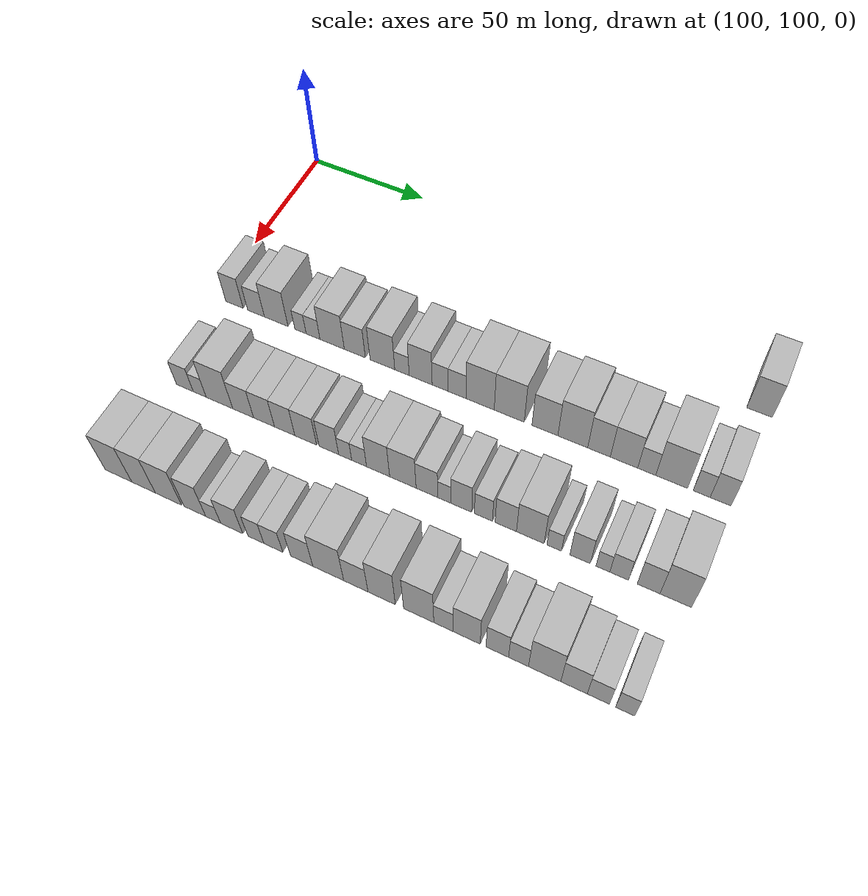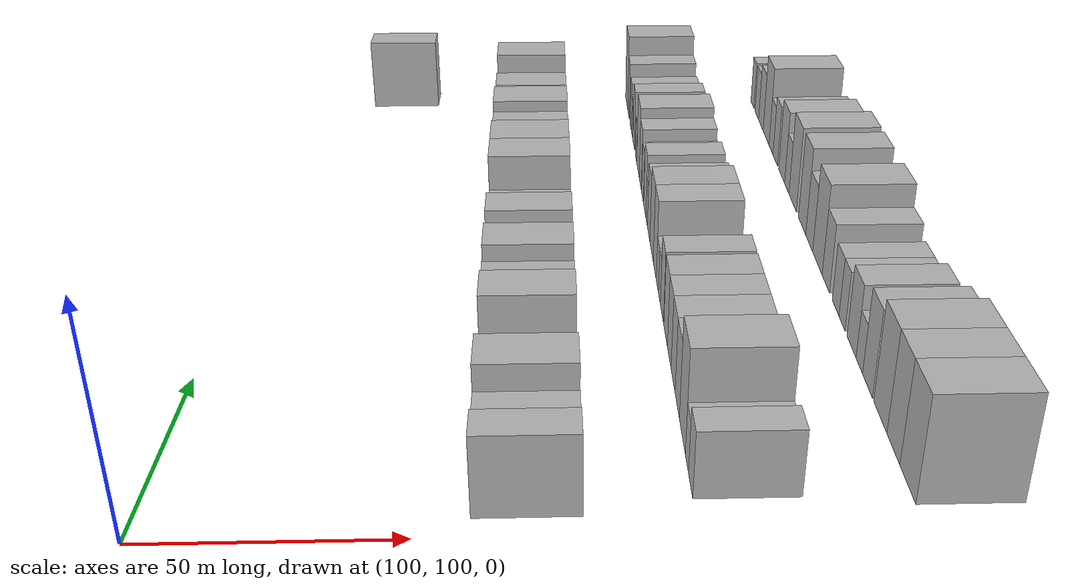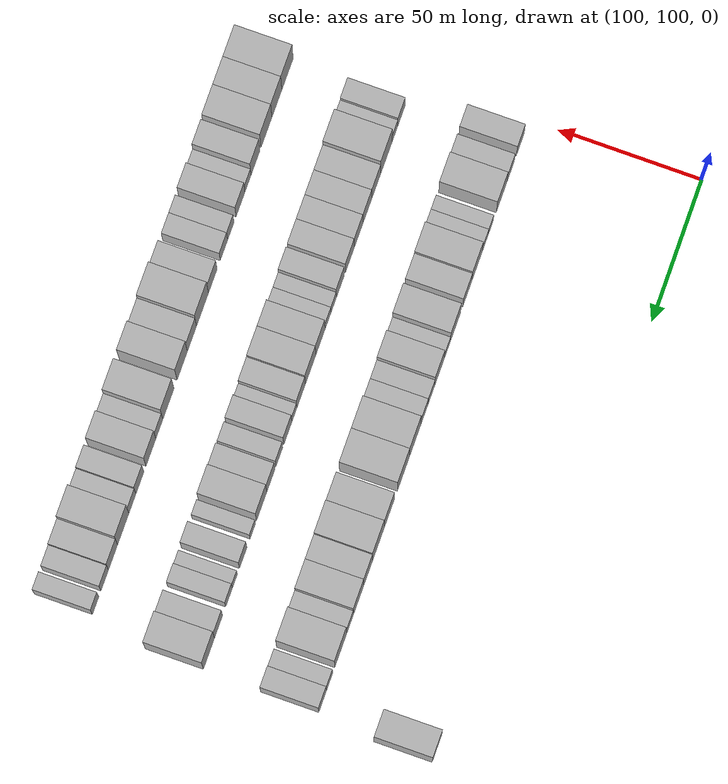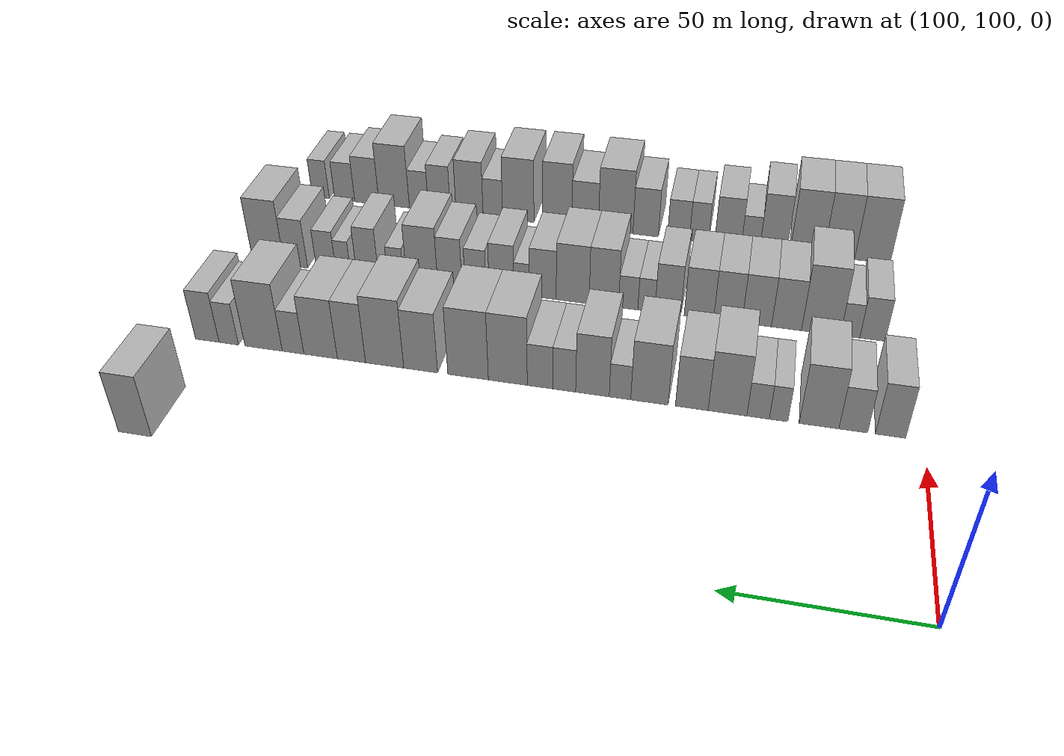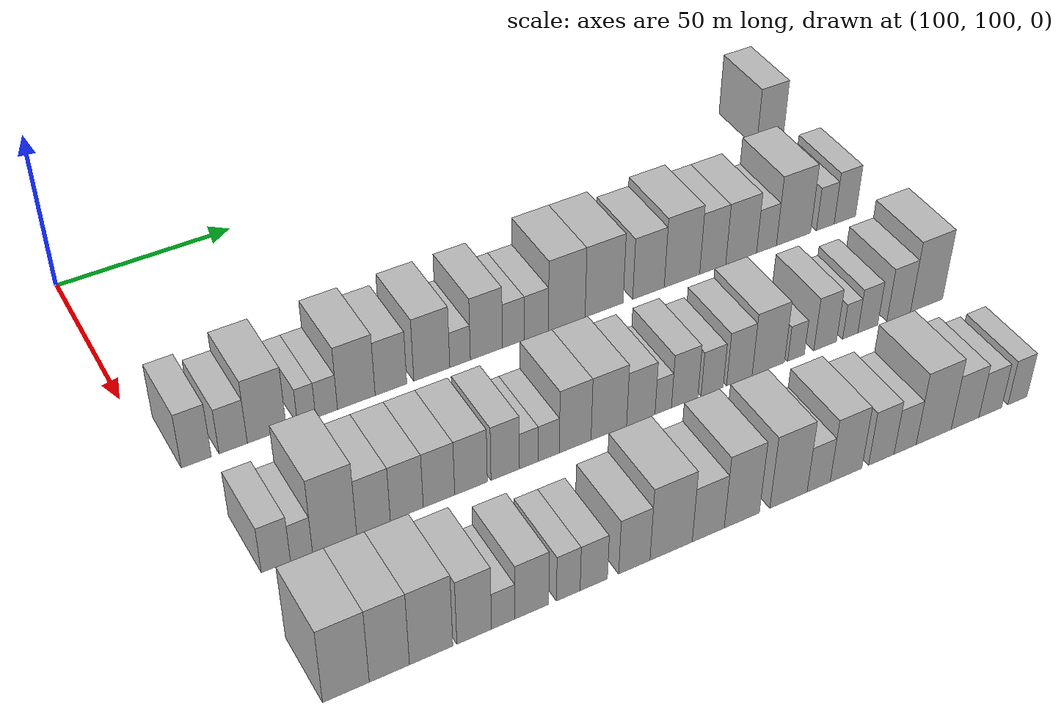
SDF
<sdf version="1.6">
 <world name="default">
  <model name="building_379">
   <static>1</static>
   <pose>130.0000 305.1991 0 0.000000 0.000000 0.000000</pose>
   <link name="link">
    <pose>0 0 10.50 0 0 0</pose>
    <collision name="collision"><geometry><box><size>20.0000 9.5007 21.0000</size></box></geometry></collision>
    <visual name="visual">
     <cast_shadows>0</cast_shadows>
     <geometry><box><size>20.0000 9.5007 21.0000</size></box></geometry>
     <material>
      <script>
       <uri>model://HANNAS_wall/materials/scripts</uri>
       <uri>model://HANNAS_wall/materials/textures</uri>
       <name>vrc/HANNAS_wall</name>
      </script>
     </material>
    </visual>
   </link>
  </model>
  <model name="building_496">
   <static>1</static>
   <pose>170.0000 108.9377 0 0.000000 0.000000 0.000000</pose>
   <link name="link">
    <pose>0 0 9.00 0 0 0</pose>
    <collision name="collision"><geometry><box><size>20.0000 7.8221 18.0000</size></box></geometry></collision>
    <visual name="visual">
     <cast_shadows>0</cast_shadows>
     <geometry><box><size>20.0000 7.8221 18.0000</size></box></geometry>
     <material>
      <script>
       <uri>model://HANNAS_wall/materials/scripts</uri>
       <uri>model://HANNAS_wall/materials/textures</uri>
       <name>vrc/HANNAS_wall</name>
      </script>
     </material>
    </visual>
   </link>
  </model>
  <model name="building_497">
   <static>1</static>
   <pose>170.0000 118.5829 0 0.000000 0.000000 0.000000</pose>
   <link name="link">
    <pose>0 0 7.50 0 0 0</pose>
    <collision name="collision"><geometry><box><size>20.0000 7.4683 15.0000</size></box></geometry></collision>
    <visual name="visual">
     <cast_shadows>0</cast_shadows>
     <geometry><box><size>20.0000 7.4683 15.0000</size></box></geometry>
     <material>
      <script>
       <uri>model://HANNAS_wall/materials/scripts</uri>
       <uri>model://HANNAS_wall/materials/textures</uri>
       <name>vrc/HANNAS_wall</name>
      </script>
     </material>
    </visual>
   </link>
  </model>
  <model name="building_498">
   <static>1</static>
   <pose>170.0000 127.5397 0 0.000000 0.000000 0.000000</pose>
   <link name="link">
    <pose>0 0 10.50 0 0 0</pose>
    <collision name="collision"><geometry><box><size>20.0000 10.4454 21.0000</size></box></geometry></collision>
    <visual name="visual">
     <cast_shadows>0</cast_shadows>
     <geometry><box><size>20.0000 10.4454 21.0000</size></box></geometry>
     <material>
      <script>
       <uri>model://HANNAS_wall/materials/scripts</uri>
       <uri>model://HANNAS_wall/materials/textures</uri>
       <name>vrc/HANNAS_wall</name>
      </script>
     </material>
    </visual>
   </link>
  </model>
  <model name="building_499">
   <static>1</static>
   <pose>170.0000 138.2293 0 0.000000 0.000000 0.000000</pose>
   <link name="link">
    <pose>0 0 6.00 0 0 0</pose>
    <collision name="collision"><geometry><box><size>20.0000 4.9337 12.0000</size></box></geometry></collision>
    <visual name="visual">
     <cast_shadows>0</cast_shadows>
     <geometry><box><size>20.0000 4.9337 12.0000</size></box></geometry>
     <material>
      <script>
       <uri>model://HANNAS_wall/materials/scripts</uri>
       <uri>model://HANNAS_wall/materials/textures</uri>
       <name>vrc/HANNAS_wall</name>
      </script>
     </material>
    </visual>
   </link>
  </model>
  <model name="building_500">
   <static>1</static>
   <pose>170.0000 143.6914 0 0.000000 0.000000 0.000000</pose>
   <link name="link">
    <pose>0 0 6.00 0 0 0</pose>
    <collision name="collision"><geometry><box><size>20.0000 5.9903 12.0000</size></box></geometry></collision>
    <visual name="visual">
     <cast_shadows>0</cast_shadows>
     <geometry><box><size>20.0000 5.9903 12.0000</size></box></geometry>
     <material>
      <script>
       <uri>model://HANNAS_wall/materials/scripts</uri>
       <uri>model://HANNAS_wall/materials/textures</uri>
       <name>vrc/HANNAS_wall</name>
      </script>
     </material>
    </visual>
   </link>
  </model>
  <model name="building_501">
   <static>1</static>
   <pose>170.0000 151.9131 0 0.000000 0.000000 0.000000</pose>
   <link name="link">
    <pose>0 0 10.50 0 0 0</pose>
    <collision name="collision"><geometry><box><size>20.0000 10.4530 21.0000</size></box></geometry></collision>
    <visual name="visual">
     <cast_shadows>0</cast_shadows>
     <geometry><box><size>20.0000 10.4530 21.0000</size></box></geometry>
     <material>
      <script>
       <uri>model://HANNAS_wall/materials/scripts</uri>
       <uri>model://HANNAS_wall/materials/textures</uri>
       <name>vrc/HANNAS_wall</name>
      </script>
     </material>
    </visual>
   </link>
  </model>
  <model name="building_502">
   <static>1</static>
   <pose>170.0000 161.5912 0 0.000000 0.000000 0.000000</pose>
   <link name="link">
    <pose>0 0 9.00 0 0 0</pose>
    <collision name="collision"><geometry><box><size>20.0000 8.9033 18.0000</size></box></geometry></collision>
    <visual name="visual">
     <cast_shadows>0</cast_shadows>
     <geometry><box><size>20.0000 8.9033 18.0000</size></box></geometry>
     <material>
      <script>
       <uri>model://HANNAS_wall/materials/scripts</uri>
       <uri>model://HANNAS_wall/materials/textures</uri>
       <name>vrc/HANNAS_wall</name>
      </script>
     </material>
    </visual>
   </link>
  </model>
  <model name="building_503">
   <static>1</static>
   <pose>170.0000 173.2018 0 0.000000 0.000000 0.000000</pose>
   <link name="link">
    <pose>0 0 10.50 0 0 0</pose>
    <collision name="collision"><geometry><box><size>20.0000 10.3179 21.0000</size></box></geometry></collision>
    <visual name="visual">
     <cast_shadows>0</cast_shadows>
     <geometry><box><size>20.0000 10.3179 21.0000</size></box></geometry>
     <material>
      <script>
       <uri>model://HANNAS_wall/materials/scripts</uri>
       <uri>model://HANNAS_wall/materials/textures</uri>
       <name>vrc/HANNAS_wall</name>
      </script>
     </material>
    </visual>
   </link>
  </model>
  <model name="building_504">
   <static>1</static>
   <pose>170.0000 181.3502 0 0.000000 0.000000 0.000000</pose>
   <link name="link">
    <pose>0 0 6.00 0 0 0</pose>
    <collision name="collision"><geometry><box><size>20.0000 5.9787 12.0000</size></box></geometry></collision>
    <visual name="visual">
     <cast_shadows>0</cast_shadows>
     <geometry><box><size>20.0000 5.9787 12.0000</size></box></geometry>
     <material>
      <script>
       <uri>model://HANNAS_wall/materials/scripts</uri>
       <uri>model://HANNAS_wall/materials/textures</uri>
       <name>vrc/HANNAS_wall</name>
      </script>
     </material>
    </visual>
   </link>
  </model>
  <model name="building_505">
   <static>1</static>
   <pose>170.0000 189.0391 0 0.000000 0.000000 0.000000</pose>
   <link name="link">
    <pose>0 0 10.50 0 0 0</pose>
    <collision name="collision"><geometry><box><size>20.0000 9.3990 21.0000</size></box></geometry></collision>
    <visual name="visual">
     <cast_shadows>0</cast_shadows>
     <geometry><box><size>20.0000 9.3990 21.0000</size></box></geometry>
     <material>
      <script>
       <uri>model://HANNAS_wall/materials/scripts</uri>
       <uri>model://HANNAS_wall/materials/textures</uri>
       <name>vrc/HANNAS_wall</name>
      </script>
     </material>
    </visual>
   </link>
  </model>
  <model name="building_506">
   <static>1</static>
   <pose>170.0000 196.9873 0 0.000000 0.000000 0.000000</pose>
   <link name="link">
    <pose>0 0 7.50 0 0 0</pose>
    <collision name="collision"><geometry><box><size>20.0000 6.4974 15.0000</size></box></geometry></collision>
    <visual name="visual">
     <cast_shadows>0</cast_shadows>
     <geometry><box><size>20.0000 6.4974 15.0000</size></box></geometry>
     <material>
      <script>
       <uri>model://HANNAS_wall/materials/scripts</uri>
       <uri>model://HANNAS_wall/materials/textures</uri>
       <name>vrc/HANNAS_wall</name>
      </script>
     </material>
    </visual>
   </link>
  </model>
  <model name="building_507">
   <static>1</static>
   <pose>170.0000 203.8394 0 0.000000 0.000000 0.000000</pose>
   <link name="link">
    <pose>0 0 7.50 0 0 0</pose>
    <collision name="collision"><geometry><box><size>20.0000 7.2068 15.0000</size></box></geometry></collision>
    <visual name="visual">
     <cast_shadows>0</cast_shadows>
     <geometry><box><size>20.0000 7.2068 15.0000</size></box></geometry>
     <material>
      <script>
       <uri>model://HANNAS_wall/materials/scripts</uri>
       <uri>model://HANNAS_wall/materials/textures</uri>
       <name>vrc/HANNAS_wall</name>
      </script>
     </material>
    </visual>
   </link>
  </model>
  <model name="building_508">
   <static>1</static>
   <pose>170.0000 213.0315 0 0.000000 0.000000 0.000000</pose>
   <link name="link">
    <pose>0 0 12.00 0 0 0</pose>
    <collision name="collision"><geometry><box><size>20.0000 11.1772 24.0000</size></box></geometry></collision>
    <visual name="visual">
     <cast_shadows>0</cast_shadows>
     <geometry><box><size>20.0000 11.1772 24.0000</size></box></geometry>
     <material>
      <script>
       <uri>model://HANNAS_wall/materials/scripts</uri>
       <uri>model://HANNAS_wall/materials/textures</uri>
       <name>vrc/HANNAS_wall</name>
      </script>
     </material>
    </visual>
   </link>
  </model>
  <model name="building_509">
   <static>1</static>
   <pose>170.0000 224.4998 0 0.000000 0.000000 0.000000</pose>
   <link name="link">
    <pose>0 0 12.00 0 0 0</pose>
    <collision name="collision"><geometry><box><size>20.0000 11.7595 24.0000</size></box></geometry></collision>
    <visual name="visual">
     <cast_shadows>0</cast_shadows>
     <geometry><box><size>20.0000 11.7595 24.0000</size></box></geometry>
     <material>
      <script>
       <uri>model://HANNAS_wall/materials/scripts</uri>
       <uri>model://HANNAS_wall/materials/textures</uri>
       <name>vrc/HANNAS_wall</name>
      </script>
     </material>
    </visual>
   </link>
  </model>
  <model name="building_510">
   <static>1</static>
   <pose>170.0000 238.3627 0 0.000000 0.000000 0.000000</pose>
   <link name="link">
    <pose>0 0 10.50 0 0 0</pose>
    <collision name="collision"><geometry><box><size>20.0000 9.9662 21.0000</size></box></geometry></collision>
    <visual name="visual">
     <cast_shadows>0</cast_shadows>
     <geometry><box><size>20.0000 9.9662 21.0000</size></box></geometry>
     <material>
      <script>
       <uri>model://HANNAS_wall/materials/scripts</uri>
       <uri>model://HANNAS_wall/materials/textures</uri>
       <name>vrc/HANNAS_wall</name>
      </script>
     </material>
    </visual>
   </link>
  </model>
  <model name="building_511">
   <static>1</static>
   <pose>170.0000 249.0247 0 0.000000 0.000000 0.000000</pose>
   <link name="link">
    <pose>0 0 12.00 0 0 0</pose>
    <collision name="collision"><geometry><box><size>20.0000 11.3579 24.0000</size></box></geometry></collision>
    <visual name="visual">
     <cast_shadows>0</cast_shadows>
     <geometry><box><size>20.0000 11.3579 24.0000</size></box></geometry>
     <material>
      <script>
       <uri>model://HANNAS_wall/materials/scripts</uri>
       <uri>model://HANNAS_wall/materials/textures</uri>
       <name>vrc/HANNAS_wall</name>
      </script>
     </material>
    </visual>
   </link>
  </model>
  <model name="building_512">
   <static>1</static>
   <pose>170.0000 258.9443 0 0.000000 0.000000 0.000000</pose>
   <link name="link">
    <pose>0 0 10.50 0 0 0</pose>
    <collision name="collision"><geometry><box><size>20.0000 8.4813 21.0000</size></box></geometry></collision>
    <visual name="visual">
     <cast_shadows>0</cast_shadows>
     <geometry><box><size>20.0000 8.4813 21.0000</size></box></geometry>
     <material>
      <script>
       <uri>model://HANNAS_wall/materials/scripts</uri>
       <uri>model://HANNAS_wall/materials/textures</uri>
       <name>vrc/HANNAS_wall</name>
      </script>
     </material>
    </visual>
   </link>
  </model>
  <model name="building_513">
   <static>1</static>
   <pose>170.0000 268.2589 0 0.000000 0.000000 0.000000</pose>
   <link name="link">
    <pose>0 0 10.50 0 0 0</pose>
    <collision name="collision"><geometry><box><size>20.0000 10.1478 21.0000</size></box></geometry></collision>
    <visual name="visual">
     <cast_shadows>0</cast_shadows>
     <geometry><box><size>20.0000 10.1478 21.0000</size></box></geometry>
     <material>
      <script>
       <uri>model://HANNAS_wall/materials/scripts</uri>
       <uri>model://HANNAS_wall/materials/textures</uri>
       <name>vrc/HANNAS_wall</name>
      </script>
     </material>
    </visual>
   </link>
  </model>
  <model name="building_514">
   <static>1</static>
   <pose>170.0000 276.6411 0 0.000000 0.000000 0.000000</pose>
   <link name="link">
    <pose>0 0 7.50 0 0 0</pose>
    <collision name="collision"><geometry><box><size>20.0000 6.6167 15.0000</size></box></geometry></collision>
    <visual name="visual">
     <cast_shadows>0</cast_shadows>
     <geometry><box><size>20.0000 6.6167 15.0000</size></box></geometry>
     <material>
      <script>
       <uri>model://HANNAS_wall/materials/scripts</uri>
       <uri>model://HANNAS_wall/materials/textures</uri>
       <name>vrc/HANNAS_wall</name>
      </script>
     </material>
    </visual>
   </link>
  </model>
  <model name="building_515">
   <static>1</static>
   <pose>170.0000 285.7174 0 0.000000 0.000000 0.000000</pose>
   <link name="link">
    <pose>0 0 12.00 0 0 0</pose>
    <collision name="collision"><geometry><box><size>20.0000 11.5358 24.0000</size></box></geometry></collision>
    <visual name="visual">
     <cast_shadows>0</cast_shadows>
     <geometry><box><size>20.0000 11.5358 24.0000</size></box></geometry>
     <material>
      <script>
       <uri>model://HANNAS_wall/materials/scripts</uri>
       <uri>model://HANNAS_wall/materials/textures</uri>
       <name>vrc/HANNAS_wall</name>
      </script>
     </material>
    </visual>
   </link>
  </model>
  <model name="building_516">
   <static>1</static>
   <pose>170.0000 296.5160 0 0.000000 0.000000 0.000000</pose>
   <link name="link">
    <pose>0 0 7.50 0 0 0</pose>
    <collision name="collision"><geometry><box><size>20.0000 6.0614 15.0000</size></box></geometry></collision>
    <visual name="visual">
     <cast_shadows>0</cast_shadows>
     <geometry><box><size>20.0000 6.0614 15.0000</size></box></geometry>
     <material>
      <script>
       <uri>model://HANNAS_wall/materials/scripts</uri>
       <uri>model://HANNAS_wall/materials/textures</uri>
       <name>vrc/HANNAS_wall</name>
      </script>
     </material>
    </visual>
   </link>
  </model>
  <model name="building_517">
   <static>1</static>
   <pose>170.0000 303.2435 0 0.000000 0.000000 0.000000</pose>
   <link name="link">
    <pose>0 0 9.00 0 0 0</pose>
    <collision name="collision"><geometry><box><size>20.0000 7.3937 18.0000</size></box></geometry></collision>
    <visual name="visual">
     <cast_shadows>0</cast_shadows>
     <geometry><box><size>20.0000 7.3937 18.0000</size></box></geometry>
     <material>
      <script>
       <uri>model://HANNAS_wall/materials/scripts</uri>
       <uri>model://HANNAS_wall/materials/textures</uri>
       <name>vrc/HANNAS_wall</name>
      </script>
     </material>
    </visual>
   </link>
  </model>
  <model name="building_622">
   <static>1</static>
   <pose>210.0000 112.8214 0 0.000000 0.000000 0.000000</pose>
   <link name="link">
    <pose>0 0 7.50 0 0 0</pose>
    <collision name="collision"><geometry><box><size>20.0000 7.2841 15.0000</size></box></geometry></collision>
    <visual name="visual">
     <cast_shadows>0</cast_shadows>
     <geometry><box><size>20.0000 7.2841 15.0000</size></box></geometry>
     <material>
      <script>
       <uri>model://HANNAS_wall/materials/scripts</uri>
       <uri>model://HANNAS_wall/materials/textures</uri>
       <name>vrc/HANNAS_wall</name>
      </script>
     </material>
    </visual>
   </link>
  </model>
  <model name="building_623">
   <static>1</static>
   <pose>210.0000 119.2446 0 0.000000 0.000000 0.000000</pose>
   <link name="link">
    <pose>0 0 6.00 0 0 0</pose>
    <collision name="collision"><geometry><box><size>20.0000 5.5623 12.0000</size></box></geometry></collision>
    <visual name="visual">
     <cast_shadows>0</cast_shadows>
     <geometry><box><size>20.0000 5.5623 12.0000</size></box></geometry>
     <material>
      <script>
       <uri>model://HANNAS_wall/materials/scripts</uri>
       <uri>model://HANNAS_wall/materials/textures</uri>
       <name>vrc/HANNAS_wall</name>
      </script>
     </material>
    </visual>
   </link>
  </model>
  <model name="building_624">
   <static>1</static>
   <pose>210.0000 127.6757 0 0.000000 0.000000 0.000000</pose>
   <link name="link">
    <pose>0 0 12.00 0 0 0</pose>
    <collision name="collision"><geometry><box><size>20.0000 11.2999 24.0000</size></box></geometry></collision>
    <visual name="visual">
     <cast_shadows>0</cast_shadows>
     <geometry><box><size>20.0000 11.2999 24.0000</size></box></geometry>
     <material>
      <script>
       <uri>model://HANNAS_wall/materials/scripts</uri>
       <uri>model://HANNAS_wall/materials/textures</uri>
       <name>vrc/HANNAS_wall</name>
      </script>
     </material>
    </visual>
   </link>
  </model>
  <model name="building_625">
   <static>1</static>
   <pose>210.0000 137.7132 0 0.000000 0.000000 0.000000</pose>
   <link name="link">
    <pose>0 0 9.00 0 0 0</pose>
    <collision name="collision"><geometry><box><size>20.0000 8.7752 18.0000</size></box></geometry></collision>
    <visual name="visual">
     <cast_shadows>0</cast_shadows>
     <geometry><box><size>20.0000 8.7752 18.0000</size></box></geometry>
     <material>
      <script>
       <uri>model://HANNAS_wall/materials/scripts</uri>
       <uri>model://HANNAS_wall/materials/textures</uri>
       <name>vrc/HANNAS_wall</name>
      </script>
     </material>
    </visual>
   </link>
  </model>
  <model name="building_626">
   <static>1</static>
   <pose>210.0000 146.4480 0 0.000000 0.000000 0.000000</pose>
   <link name="link">
    <pose>0 0 9.00 0 0 0</pose>
    <collision name="collision"><geometry><box><size>20.0000 8.6944 18.0000</size></box></geometry></collision>
    <visual name="visual">
     <cast_shadows>0</cast_shadows>
     <geometry><box><size>20.0000 8.6944 18.0000</size></box></geometry>
     <material>
      <script>
       <uri>model://HANNAS_wall/materials/scripts</uri>
       <uri>model://HANNAS_wall/materials/textures</uri>
       <name>vrc/HANNAS_wall</name>
      </script>
     </material>
    </visual>
   </link>
  </model>
  <model name="building_627">
   <static>1</static>
   <pose>210.0000 154.9999 0 0.000000 0.000000 0.000000</pose>
   <link name="link">
    <pose>0 0 9.00 0 0 0</pose>
    <collision name="collision"><geometry><box><size>20.0000 8.4093 18.0000</size></box></geometry></collision>
    <visual name="visual">
     <cast_shadows>0</cast_shadows>
     <geometry><box><size>20.0000 8.4093 18.0000</size></box></geometry>
     <material>
      <script>
       <uri>model://HANNAS_wall/materials/scripts</uri>
       <uri>model://HANNAS_wall/materials/textures</uri>
       <name>vrc/HANNAS_wall</name>
      </script>
     </material>
    </visual>
   </link>
  </model>
  <model name="building_628">
   <static>1</static>
   <pose>210.0000 163.6226 0 0.000000 0.000000 0.000000</pose>
   <link name="link">
    <pose>0 0 9.00 0 0 0</pose>
    <collision name="collision"><geometry><box><size>20.0000 8.8362 18.0000</size></box></geometry></collision>
    <visual name="visual">
     <cast_shadows>0</cast_shadows>
     <geometry><box><size>20.0000 8.8362 18.0000</size></box></geometry>
     <material>
      <script>
       <uri>model://HANNAS_wall/materials/scripts</uri>
       <uri>model://HANNAS_wall/materials/textures</uri>
       <name>vrc/HANNAS_wall</name>
      </script>
     </material>
    </visual>
   </link>
  </model>
  <model name="building_629">
   <static>1</static>
   <pose>210.0000 172.9639 0 0.000000 0.000000 0.000000</pose>
   <link name="link">
    <pose>0 0 9.00 0 0 0</pose>
    <collision name="collision"><geometry><box><size>20.0000 7.8464 18.0000</size></box></geometry></collision>
    <visual name="visual">
     <cast_shadows>0</cast_shadows>
     <geometry><box><size>20.0000 7.8464 18.0000</size></box></geometry>
     <material>
      <script>
       <uri>model://HANNAS_wall/materials/scripts</uri>
       <uri>model://HANNAS_wall/materials/textures</uri>
       <name>vrc/HANNAS_wall</name>
      </script>
     </material>
    </visual>
   </link>
  </model>
  <model name="building_630">
   <static>1</static>
   <pose>210.0000 179.4809 0 0.000000 0.000000 0.000000</pose>
   <link name="link">
    <pose>0 0 6.00 0 0 0</pose>
    <collision name="collision"><geometry><box><size>20.0000 5.1876 12.0000</size></box></geometry></collision>
    <visual name="visual">
     <cast_shadows>0</cast_shadows>
     <geometry><box><size>20.0000 5.1876 12.0000</size></box></geometry>
     <material>
      <script>
       <uri>model://HANNAS_wall/materials/scripts</uri>
       <uri>model://HANNAS_wall/materials/textures</uri>
       <name>vrc/HANNAS_wall</name>
      </script>
     </material>
    </visual>
   </link>
  </model>
  <model name="building_631">
   <static>1</static>
   <pose>210.0000 185.0229 0 0.000000 0.000000 0.000000</pose>
   <link name="link">
    <pose>0 0 6.00 0 0 0</pose>
    <collision name="collision"><geometry><box><size>20.0000 5.8966 12.0000</size></box></geometry></collision>
    <visual name="visual">
     <cast_shadows>0</cast_shadows>
     <geometry><box><size>20.0000 5.8966 12.0000</size></box></geometry>
     <material>
      <script>
       <uri>model://HANNAS_wall/materials/scripts</uri>
       <uri>model://HANNAS_wall/materials/textures</uri>
       <name>vrc/HANNAS_wall</name>
      </script>
     </material>
    </visual>
   </link>
  </model>
  <model name="building_632">
   <static>1</static>
   <pose>210.0000 192.4961 0 0.000000 0.000000 0.000000</pose>
   <link name="link">
    <pose>0 0 10.50 0 0 0</pose>
    <collision name="collision"><geometry><box><size>20.0000 9.0498 21.0000</size></box></geometry></collision>
    <visual name="visual">
     <cast_shadows>0</cast_shadows>
     <geometry><box><size>20.0000 9.0498 21.0000</size></box></geometry>
     <material>
      <script>
       <uri>model://HANNAS_wall/materials/scripts</uri>
       <uri>model://HANNAS_wall/materials/textures</uri>
       <name>vrc/HANNAS_wall</name>
      </script>
     </material>
    </visual>
   </link>
  </model>
  <model name="building_633">
   <static>1</static>
   <pose>210.0000 202.1435 0 0.000000 0.000000 0.000000</pose>
   <link name="link">
    <pose>0 0 10.50 0 0 0</pose>
    <collision name="collision"><geometry><box><size>20.0000 10.2449 21.0000</size></box></geometry></collision>
    <visual name="visual">
     <cast_shadows>0</cast_shadows>
     <geometry><box><size>20.0000 10.2449 21.0000</size></box></geometry>
     <material>
      <script>
       <uri>model://HANNAS_wall/materials/scripts</uri>
       <uri>model://HANNAS_wall/materials/textures</uri>
       <name>vrc/HANNAS_wall</name>
      </script>
     </material>
    </visual>
   </link>
  </model>
  <model name="building_634">
   <static>1</static>
   <pose>210.0000 211.4252 0 0.000000 0.000000 0.000000</pose>
   <link name="link">
    <pose>0 0 9.00 0 0 0</pose>
    <collision name="collision"><geometry><box><size>20.0000 8.3184 18.0000</size></box></geometry></collision>
    <visual name="visual">
     <cast_shadows>0</cast_shadows>
     <geometry><box><size>20.0000 8.3184 18.0000</size></box></geometry>
     <material>
      <script>
       <uri>model://HANNAS_wall/materials/scripts</uri>
       <uri>model://HANNAS_wall/materials/textures</uri>
       <name>vrc/HANNAS_wall</name>
      </script>
     </material>
    </visual>
   </link>
  </model>
  <model name="building_635">
   <static>1</static>
   <pose>210.0000 218.0142 0 0.000000 0.000000 0.000000</pose>
   <link name="link">
    <pose>0 0 6.00 0 0 0</pose>
    <collision name="collision"><geometry><box><size>20.0000 4.8594 12.0000</size></box></geometry></collision>
    <visual name="visual">
     <cast_shadows>0</cast_shadows>
     <geometry><box><size>20.0000 4.8594 12.0000</size></box></geometry>
     <material>
      <script>
       <uri>model://HANNAS_wall/materials/scripts</uri>
       <uri>model://HANNAS_wall/materials/textures</uri>
       <name>vrc/HANNAS_wall</name>
      </script>
     </material>
    </visual>
   </link>
  </model>
  <model name="building_636">
   <static>1</static>
   <pose>210.0000 224.3805 0 0.000000 0.000000 0.000000</pose>
   <link name="link">
    <pose>0 0 9.00 0 0 0</pose>
    <collision name="collision"><geometry><box><size>20.0000 7.8732 18.0000</size></box></geometry></collision>
    <visual name="visual">
     <cast_shadows>0</cast_shadows>
     <geometry><box><size>20.0000 7.8732 18.0000</size></box></geometry>
     <material>
      <script>
       <uri>model://HANNAS_wall/materials/scripts</uri>
       <uri>model://HANNAS_wall/materials/textures</uri>
       <name>vrc/HANNAS_wall</name>
      </script>
     </material>
    </visual>
   </link>
  </model>
  <model name="building_637">
   <static>1</static>
   <pose>210.0000 232.6534 0 0.000000 0.000000 0.000000</pose>
   <link name="link">
    <pose>0 0 7.50 0 0 0</pose>
    <collision name="collision"><geometry><box><size>20.0000 6.6727 15.0000</size></box></geometry></collision>
    <visual name="visual">
     <cast_shadows>0</cast_shadows>
     <geometry><box><size>20.0000 6.6727 15.0000</size></box></geometry>
     <material>
      <script>
       <uri>model://HANNAS_wall/materials/scripts</uri>
       <uri>model://HANNAS_wall/materials/textures</uri>
       <name>vrc/HANNAS_wall</name>
      </script>
     </material>
    </visual>
   </link>
  </model>
  <model name="building_638">
   <static>1</static>
   <pose>210.0000 240.9076 0 0.000000 0.000000 0.000000</pose>
   <link name="link">
    <pose>0 0 9.00 0 0 0</pose>
    <collision name="collision"><geometry><box><size>20.0000 7.8357 18.0000</size></box></geometry></collision>
    <visual name="visual">
     <cast_shadows>0</cast_shadows>
     <geometry><box><size>20.0000 7.8357 18.0000</size></box></geometry>
     <material>
      <script>
       <uri>model://HANNAS_wall/materials/scripts</uri>
       <uri>model://HANNAS_wall/materials/textures</uri>
       <name>vrc/HANNAS_wall</name>
      </script>
     </material>
    </visual>
   </link>
  </model>
  <model name="building_639">
   <static>1</static>
   <pose>210.0000 249.8426 0 0.000000 0.000000 0.000000</pose>
   <link name="link">
    <pose>0 0 10.50 0 0 0</pose>
    <collision name="collision"><geometry><box><size>20.0000 10.0343 21.0000</size></box></geometry></collision>
    <visual name="visual">
     <cast_shadows>0</cast_shadows>
     <geometry><box><size>20.0000 10.0343 21.0000</size></box></geometry>
     <material>
      <script>
       <uri>model://HANNAS_wall/materials/scripts</uri>
       <uri>model://HANNAS_wall/materials/textures</uri>
       <name>vrc/HANNAS_wall</name>
      </script>
     </material>
    </visual>
   </link>
  </model>
  <model name="building_640">
   <static>1</static>
   <pose>210.0000 258.4802 0 0.000000 0.000000 0.000000</pose>
   <link name="link">
    <pose>0 0 6.00 0 0 0</pose>
    <collision name="collision"><geometry><box><size>20.0000 5.2409 12.0000</size></box></geometry></collision>
    <visual name="visual">
     <cast_shadows>0</cast_shadows>
     <geometry><box><size>20.0000 5.2409 12.0000</size></box></geometry>
     <material>
      <script>
       <uri>model://HANNAS_wall/materials/scripts</uri>
       <uri>model://HANNAS_wall/materials/textures</uri>
       <name>vrc/HANNAS_wall</name>
      </script>
     </material>
    </visual>
   </link>
  </model>
  <model name="building_641">
   <static>1</static>
   <pose>210.0000 267.7185 0 0.000000 0.000000 0.000000</pose>
   <link name="link">
    <pose>0 0 9.00 0 0 0</pose>
    <collision name="collision"><geometry><box><size>20.0000 7.2357 18.0000</size></box></geometry></collision>
    <visual name="visual">
     <cast_shadows>0</cast_shadows>
     <geometry><box><size>20.0000 7.2357 18.0000</size></box></geometry>
     <material>
      <script>
       <uri>model://HANNAS_wall/materials/scripts</uri>
       <uri>model://HANNAS_wall/materials/textures</uri>
       <name>vrc/HANNAS_wall</name>
      </script>
     </material>
    </visual>
   </link>
  </model>
  <model name="building_642">
   <static>1</static>
   <pose>210.0000 275.7657 0 0.000000 0.000000 0.000000</pose>
   <link name="link">
    <pose>0 0 6.00 0 0 0</pose>
    <collision name="collision"><geometry><box><size>20.0000 4.8587 12.0000</size></box></geometry></collision>
    <visual name="visual">
     <cast_shadows>0</cast_shadows>
     <geometry><box><size>20.0000 4.8587 12.0000</size></box></geometry>
     <material>
      <script>
       <uri>model://HANNAS_wall/materials/scripts</uri>
       <uri>model://HANNAS_wall/materials/textures</uri>
       <name>vrc/HANNAS_wall</name>
      </script>
     </material>
    </visual>
   </link>
  </model>
  <model name="building_643">
   <static>1</static>
   <pose>210.0000 281.4317 0 0.000000 0.000000 0.000000</pose>
   <link name="link">
    <pose>0 0 7.50 0 0 0</pose>
    <collision name="collision"><geometry><box><size>20.0000 6.4734 15.0000</size></box></geometry></collision>
    <visual name="visual">
     <cast_shadows>0</cast_shadows>
     <geometry><box><size>20.0000 6.4734 15.0000</size></box></geometry>
     <material>
      <script>
       <uri>model://HANNAS_wall/materials/scripts</uri>
       <uri>model://HANNAS_wall/materials/textures</uri>
       <name>vrc/HANNAS_wall</name>
      </script>
     </material>
    </visual>
   </link>
  </model>
  <model name="building_644">
   <static>1</static>
   <pose>210.0000 291.5758 0 0.000000 0.000000 0.000000</pose>
   <link name="link">
    <pose>0 0 9.00 0 0 0</pose>
    <collision name="collision"><geometry><box><size>20.0000 7.8148 18.0000</size></box></geometry></collision>
    <visual name="visual">
     <cast_shadows>0</cast_shadows>
     <geometry><box><size>20.0000 7.8148 18.0000</size></box></geometry>
     <material>
      <script>
       <uri>model://HANNAS_wall/materials/scripts</uri>
       <uri>model://HANNAS_wall/materials/textures</uri>
       <name>vrc/HANNAS_wall</name>
      </script>
     </material>
    </visual>
   </link>
  </model>
  <model name="building_645">
   <static>1</static>
   <pose>210.0000 300.8366 0 0.000000 0.000000 0.000000</pose>
   <link name="link">
    <pose>0 0 12.00 0 0 0</pose>
    <collision name="collision"><geometry><box><size>20.0000 10.7068 24.0000</size></box></geometry></collision>
    <visual name="visual">
     <cast_shadows>0</cast_shadows>
     <geometry><box><size>20.0000 10.7068 24.0000</size></box></geometry>
     <material>
      <script>
       <uri>model://HANNAS_wall/materials/scripts</uri>
       <uri>model://HANNAS_wall/materials/textures</uri>
       <name>vrc/HANNAS_wall</name>
      </script>
     </material>
    </visual>
   </link>
  </model>
  <model name="building_763">
   <static>1</static>
   <pose>250.0000 112.1472 0 0.000000 0.000000 0.000000</pose>
   <link name="link">
    <pose>0 0 12.00 0 0 0</pose>
    <collision name="collision"><geometry><box><size>20.0000 11.1197 24.0000</size></box></geometry></collision>
    <visual name="visual">
     <cast_shadows>0</cast_shadows>
     <geometry><box><size>20.0000 11.1197 24.0000</size></box></geometry>
     <material>
      <script>
       <uri>model://HANNAS_wall/materials/scripts</uri>
       <uri>model://HANNAS_wall/materials/textures</uri>
       <name>vrc/HANNAS_wall</name>
      </script>
     </material>
    </visual>
   </link>
  </model>
  <model name="building_764">
   <static>1</static>
   <pose>250.0000 122.5744 0 0.000000 0.000000 0.000000</pose>
   <link name="link">
    <pose>0 0 12.00 0 0 0</pose>
    <collision name="collision"><geometry><box><size>20.0000 9.7346 24.0000</size></box></geometry></collision>
    <visual name="visual">
     <cast_shadows>0</cast_shadows>
     <geometry><box><size>20.0000 9.7346 24.0000</size></box></geometry>
     <material>
      <script>
       <uri>model://HANNAS_wall/materials/scripts</uri>
       <uri>model://HANNAS_wall/materials/textures</uri>
       <name>vrc/HANNAS_wall</name>
      </script>
     </material>
    </visual>
   </link>
  </model>
  <model name="building_765">
   <static>1</static>
   <pose>250.0000 132.7889 0 0.000000 0.000000 0.000000</pose>
   <link name="link">
    <pose>0 0 12.00 0 0 0</pose>
    <collision name="collision"><geometry><box><size>20.0000 10.6945 24.0000</size></box></geometry></collision>
    <visual name="visual">
     <cast_shadows>0</cast_shadows>
     <geometry><box><size>20.0000 10.6945 24.0000</size></box></geometry>
     <material>
      <script>
       <uri>model://HANNAS_wall/materials/scripts</uri>
       <uri>model://HANNAS_wall/materials/textures</uri>
       <name>vrc/HANNAS_wall</name>
      </script>
     </material>
    </visual>
   </link>
  </model>
  <model name="building_766">
   <static>1</static>
   <pose>250.0000 143.4881 0 0.000000 0.000000 0.000000</pose>
   <link name="link">
    <pose>0 0 10.50 0 0 0</pose>
    <collision name="collision"><geometry><box><size>20.0000 8.7039 21.0000</size></box></geometry></collision>
    <visual name="visual">
     <cast_shadows>0</cast_shadows>
     <geometry><box><size>20.0000 8.7039 21.0000</size></box></geometry>
     <material>
      <script>
       <uri>model://HANNAS_wall/materials/scripts</uri>
       <uri>model://HANNAS_wall/materials/textures</uri>
       <name>vrc/HANNAS_wall</name>
      </script>
     </material>
    </visual>
   </link>
  </model>
  <model name="building_767">
   <static>1</static>
   <pose>250.0000 150.8115 0 0.000000 0.000000 0.000000</pose>
   <link name="link">
    <pose>0 0 6.00 0 0 0</pose>
    <collision name="collision"><geometry><box><size>20.0000 5.9429 12.0000</size></box></geometry></collision>
    <visual name="visual">
     <cast_shadows>0</cast_shadows>
     <geometry><box><size>20.0000 5.9429 12.0000</size></box></geometry>
     <material>
      <script>
       <uri>model://HANNAS_wall/materials/scripts</uri>
       <uri>model://HANNAS_wall/materials/textures</uri>
       <name>vrc/HANNAS_wall</name>
      </script>
     </material>
    </visual>
   </link>
  </model>
  <model name="building_768">
   <static>1</static>
   <pose>250.0000 158.1361 0 0.000000 0.000000 0.000000</pose>
   <link name="link">
    <pose>0 0 9.00 0 0 0</pose>
    <collision name="collision"><geometry><box><size>20.0000 8.7064 18.0000</size></box></geometry></collision>
    <visual name="visual">
     <cast_shadows>0</cast_shadows>
     <geometry><box><size>20.0000 8.7064 18.0000</size></box></geometry>
     <material>
      <script>
       <uri>model://HANNAS_wall/materials/scripts</uri>
       <uri>model://HANNAS_wall/materials/textures</uri>
       <name>vrc/HANNAS_wall</name>
      </script>
     </material>
    </visual>
   </link>
  </model>
  <model name="building_769">
   <static>1</static>
   <pose>250.0000 167.5909 0 0.000000 0.000000 0.000000</pose>
   <link name="link">
    <pose>0 0 7.50 0 0 0</pose>
    <collision name="collision"><geometry><box><size>20.0000 6.2032 15.0000</size></box></geometry></collision>
    <visual name="visual">
     <cast_shadows>0</cast_shadows>
     <geometry><box><size>20.0000 6.2032 15.0000</size></box></geometry>
     <material>
      <script>
       <uri>model://HANNAS_wall/materials/scripts</uri>
       <uri>model://HANNAS_wall/materials/textures</uri>
       <name>vrc/HANNAS_wall</name>
      </script>
     </material>
    </visual>
   </link>
  </model>
  <model name="building_770">
   <static>1</static>
   <pose>250.0000 174.3134 0 0.000000 0.000000 0.000000</pose>
   <link name="link">
    <pose>0 0 7.50 0 0 0</pose>
    <collision name="collision"><geometry><box><size>20.0000 7.2418 15.0000</size></box></geometry></collision>
    <visual name="visual">
     <cast_shadows>0</cast_shadows>
     <geometry><box><size>20.0000 7.2418 15.0000</size></box></geometry>
     <material>
      <script>
       <uri>model://HANNAS_wall/materials/scripts</uri>
       <uri>model://HANNAS_wall/materials/textures</uri>
       <name>vrc/HANNAS_wall</name>
      </script>
     </material>
    </visual>
   </link>
  </model>
  <model name="building_771">
   <static>1</static>
   <pose>250.0000 185.1627 0 0.000000 0.000000 0.000000</pose>
   <link name="link">
    <pose>0 0 9.00 0 0 0</pose>
    <collision name="collision"><geometry><box><size>20.0000 8.4569 18.0000</size></box></geometry></collision>
    <visual name="visual">
     <cast_shadows>0</cast_shadows>
     <geometry><box><size>20.0000 8.4569 18.0000</size></box></geometry>
     <material>
      <script>
       <uri>model://HANNAS_wall/materials/scripts</uri>
       <uri>model://HANNAS_wall/materials/textures</uri>
       <name>vrc/HANNAS_wall</name>
      </script>
     </material>
    </visual>
   </link>
  </model>
  <model name="building_772">
   <static>1</static>
   <pose>250.0000 195.1851 0 0.000000 0.000000 0.000000</pose>
   <link name="link">
    <pose>0 0 12.00 0 0 0</pose>
    <collision name="collision"><geometry><box><size>20.0000 11.5879 24.0000</size></box></geometry></collision>
    <visual name="visual">
     <cast_shadows>0</cast_shadows>
     <geometry><box><size>20.0000 11.5879 24.0000</size></box></geometry>
     <material>
      <script>
       <uri>model://HANNAS_wall/materials/scripts</uri>
       <uri>model://HANNAS_wall/materials/textures</uri>
       <name>vrc/HANNAS_wall</name>
      </script>
     </material>
    </visual>
   </link>
  </model>
  <model name="building_773">
   <static>1</static>
   <pose>250.0000 205.4446 0 0.000000 0.000000 0.000000</pose>
   <link name="link">
    <pose>0 0 9.00 0 0 0</pose>
    <collision name="collision"><geometry><box><size>20.0000 8.9310 18.0000</size></box></geometry></collision>
    <visual name="visual">
     <cast_shadows>0</cast_shadows>
     <geometry><box><size>20.0000 8.9310 18.0000</size></box></geometry>
     <material>
      <script>
       <uri>model://HANNAS_wall/materials/scripts</uri>
       <uri>model://HANNAS_wall/materials/textures</uri>
       <name>vrc/HANNAS_wall</name>
      </script>
     </material>
    </visual>
   </link>
  </model>
  <model name="building_774">
   <static>1</static>
   <pose>250.0000 214.8825 0 0.000000 0.000000 0.000000</pose>
   <link name="link">
    <pose>0 0 12.00 0 0 0</pose>
    <collision name="collision"><geometry><box><size>20.0000 9.9449 24.0000</size></box></geometry></collision>
    <visual name="visual">
     <cast_shadows>0</cast_shadows>
     <geometry><box><size>20.0000 9.9449 24.0000</size></box></geometry>
     <material>
      <script>
       <uri>model://HANNAS_wall/materials/scripts</uri>
       <uri>model://HANNAS_wall/materials/textures</uri>
       <name>vrc/HANNAS_wall</name>
      </script>
     </material>
    </visual>
   </link>
  </model>
  <model name="building_775">
   <static>1</static>
   <pose>250.0000 228.2462 0 0.000000 0.000000 0.000000</pose>
   <link name="link">
    <pose>0 0 12.00 0 0 0</pose>
    <collision name="collision"><geometry><box><size>20.0000 10.7825 24.0000</size></box></geometry></collision>
    <visual name="visual">
     <cast_shadows>0</cast_shadows>
     <geometry><box><size>20.0000 10.7825 24.0000</size></box></geometry>
     <material>
      <script>
       <uri>model://HANNAS_wall/materials/scripts</uri>
       <uri>model://HANNAS_wall/materials/textures</uri>
       <name>vrc/HANNAS_wall</name>
      </script>
     </material>
    </visual>
   </link>
  </model>
  <model name="building_776">
   <static>1</static>
   <pose>250.0000 237.0295 0 0.000000 0.000000 0.000000</pose>
   <link name="link">
    <pose>0 0 7.50 0 0 0</pose>
    <collision name="collision"><geometry><box><size>20.0000 6.7841 15.0000</size></box></geometry></collision>
    <visual name="visual">
     <cast_shadows>0</cast_shadows>
     <geometry><box><size>20.0000 6.7841 15.0000</size></box></geometry>
     <material>
      <script>
       <uri>model://HANNAS_wall/materials/scripts</uri>
       <uri>model://HANNAS_wall/materials/textures</uri>
       <name>vrc/HANNAS_wall</name>
      </script>
     </material>
    </visual>
   </link>
  </model>
  <model name="building_777">
   <static>1</static>
   <pose>250.0000 245.1501 0 0.000000 0.000000 0.000000</pose>
   <link name="link">
    <pose>0 0 10.50 0 0 0</pose>
    <collision name="collision"><geometry><box><size>20.0000 9.4572 21.0000</size></box></geometry></collision>
    <visual name="visual">
     <cast_shadows>0</cast_shadows>
     <geometry><box><size>20.0000 9.4572 21.0000</size></box></geometry>
     <material>
      <script>
       <uri>model://HANNAS_wall/materials/scripts</uri>
       <uri>model://HANNAS_wall/materials/textures</uri>
       <name>vrc/HANNAS_wall</name>
      </script>
     </material>
    </visual>
   </link>
  </model>
  <model name="building_778">
   <static>1</static>
   <pose>250.0000 255.7415 0 0.000000 0.000000 0.000000</pose>
   <link name="link">
    <pose>0 0 9.00 0 0 0</pose>
    <collision name="collision"><geometry><box><size>20.0000 7.7257 18.0000</size></box></geometry></collision>
    <visual name="visual">
     <cast_shadows>0</cast_shadows>
     <geometry><box><size>20.0000 7.7257 18.0000</size></box></geometry>
     <material>
      <script>
       <uri>model://HANNAS_wall/materials/scripts</uri>
       <uri>model://HANNAS_wall/materials/textures</uri>
       <name>vrc/HANNAS_wall</name>
      </script>
     </material>
    </visual>
   </link>
  </model>
  <model name="building_779">
   <static>1</static>
   <pose>250.0000 262.9912 0 0.000000 0.000000 0.000000</pose>
   <link name="link">
    <pose>0 0 7.50 0 0 0</pose>
    <collision name="collision"><geometry><box><size>20.0000 6.7737 15.0000</size></box></geometry></collision>
    <visual name="visual">
     <cast_shadows>0</cast_shadows>
     <geometry><box><size>20.0000 6.7737 15.0000</size></box></geometry>
     <material>
      <script>
       <uri>model://HANNAS_wall/materials/scripts</uri>
       <uri>model://HANNAS_wall/materials/textures</uri>
       <name>vrc/HANNAS_wall</name>
      </script>
     </material>
    </visual>
   </link>
  </model>
  <model name="building_780">
   <static>1</static>
   <pose>250.0000 271.8091 0 0.000000 0.000000 0.000000</pose>
   <link name="link">
    <pose>0 0 12.00 0 0 0</pose>
    <collision name="collision"><geometry><box><size>20.0000 10.8621 24.0000</size></box></geometry></collision>
    <visual name="visual">
     <cast_shadows>0</cast_shadows>
     <geometry><box><size>20.0000 10.8621 24.0000</size></box></geometry>
     <material>
      <script>
       <uri>model://HANNAS_wall/materials/scripts</uri>
       <uri>model://HANNAS_wall/materials/textures</uri>
       <name>vrc/HANNAS_wall</name>
      </script>
     </material>
    </visual>
   </link>
  </model>
  <model name="building_781">
   <static>1</static>
   <pose>250.0000 281.6152 0 0.000000 0.000000 0.000000</pose>
   <link name="link">
    <pose>0 0 9.00 0 0 0</pose>
    <collision name="collision"><geometry><box><size>20.0000 8.7501 18.0000</size></box></geometry></collision>
    <visual name="visual">
     <cast_shadows>0</cast_shadows>
     <geometry><box><size>20.0000 8.7501 18.0000</size></box></geometry>
     <material>
      <script>
       <uri>model://HANNAS_wall/materials/scripts</uri>
       <uri>model://HANNAS_wall/materials/textures</uri>
       <name>vrc/HANNAS_wall</name>
      </script>
     </material>
    </visual>
   </link>
  </model>
  <model name="building_782">
   <static>1</static>
   <pose>250.0000 289.6118 0 0.000000 0.000000 0.000000</pose>
   <link name="link">
    <pose>0 0 7.50 0 0 0</pose>
    <collision name="collision"><geometry><box><size>20.0000 7.2429 15.0000</size></box></geometry></collision>
    <visual name="visual">
     <cast_shadows>0</cast_shadows>
     <geometry><box><size>20.0000 7.2429 15.0000</size></box></geometry>
     <material>
      <script>
       <uri>model://HANNAS_wall/materials/scripts</uri>
       <uri>model://HANNAS_wall/materials/textures</uri>
       <name>vrc/HANNAS_wall</name>
      </script>
     </material>
    </visual>
   </link>
  </model>
  <model name="building_783">
   <static>1</static>
   <pose>250.0000 298.3084 0 0.000000 0.000000 0.000000</pose>
   <link name="link">
    <pose>0 0 7.50 0 0 0</pose>
    <collision name="collision"><geometry><box><size>20.0000 6.1505 15.0000</size></box></geometry></collision>
    <visual name="visual">
     <cast_shadows>0</cast_shadows>
     <geometry><box><size>20.0000 6.1505 15.0000</size></box></geometry>
     <material>
      <script>
       <uri>model://HANNAS_wall/materials/scripts</uri>
       <uri>model://HANNAS_wall/materials/textures</uri>
       <name>vrc/HANNAS_wall</name>
      </script>
     </material>
    </visual>
   </link>
  </model>
 </world>
</sdf>
